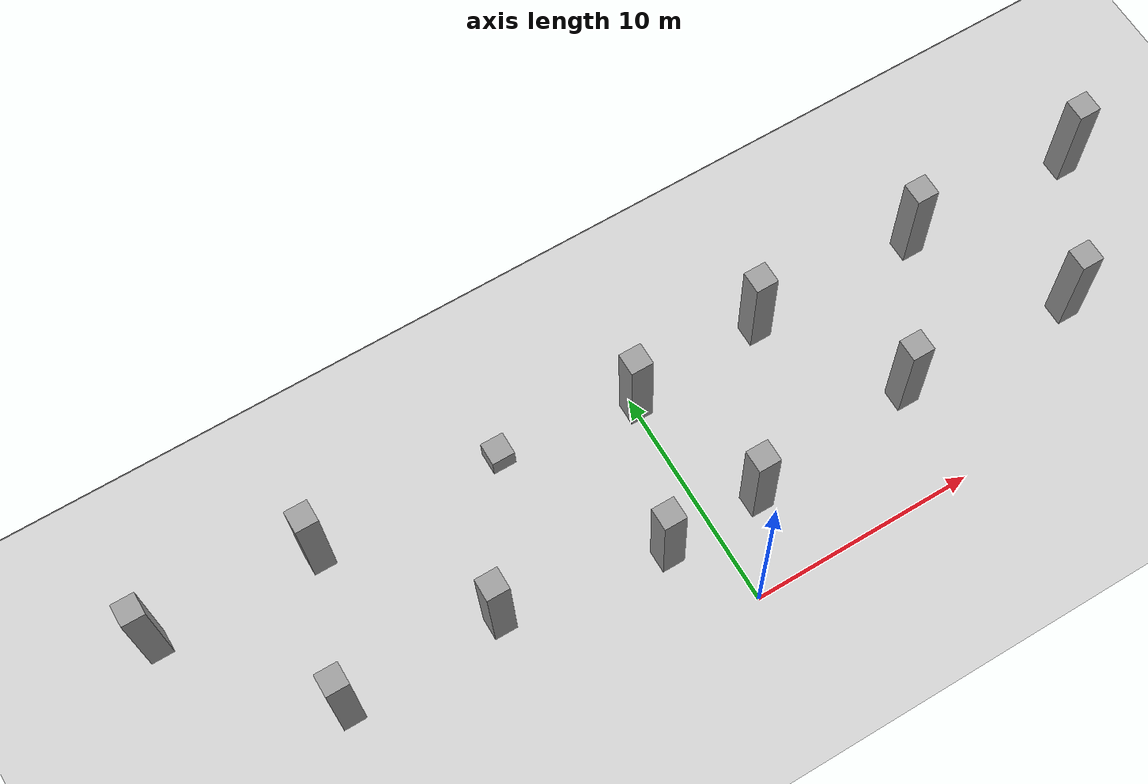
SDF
<sdf version="1.6">
 <world name="default">
  <model name="ground_plane">
   <static>1</static>
   <link name="link">
    <collision name="collision">
     <geometry><plane><normal>0 0 1</normal><size>100 100</size></plane></geometry>
     <surface>
      <contact><collide_bitmask>65535</collide_bitmask></contact>
      <friction><ode><mu>100</mu><mu2>50</mu2></ode></friction>
     </surface>
    </collision>
    <visual name="visual">
     <cast_shadows>0</cast_shadows>
     <geometry><plane><normal>0 0 1</normal><size>100 100</size></plane></geometry>
     <material>
      <script><uri>file://media/materials/scripts/gazebo.material</uri><name>Gazebo/Grey</name></script>
     </material>
    </visual>
   </link>
  </model>
  <model name="unit_box">
   <pose>-6.16523 9.81793 2.48577 0 0 -0.002672</pose>
   <link name="link">
    <inertial>
     <mass>1</mass>
     <inertia>
      <ixx>0.166667</ixx>
      <ixy>0</ixy>
      <ixz>0</ixz>
      <iyy>0.166667</iyy>
      <iyz>0</iyz>
      <izz>0.166667</izz>
     </inertia>
    </inertial>
    <collision name="collision"><geometry><box><size>1 1 1.00001</size></box></geometry></collision>
    <visual name="visual">
     <geometry><box><size>1 1 1.00001</size></box></geometry>
     <material>
      <script><name>Gazebo/Grey</name><uri>file://media/materials/scripts/gazebo.material</uri></script>
     </material>
    </visual>
   </link>
  </model>
  <model name="unit_box_clone">
   <pose>-2.19146 3.39498 2.48578 0 -0 -0.001783</pose>
   <link name="link">
    <inertial>
     <mass>1</mass>
     <inertia>
      <ixx>0.166667</ixx>
      <ixy>0</ixy>
      <ixz>0</ixz>
      <iyy>0.166667</iyy>
      <iyz>0</iyz>
      <izz>0.166667</izz>
     </inertia>
    </inertial>
    <collision name="collision"><geometry><box><size>1 1 4.95156</size></box></geometry></collision>
    <visual name="visual">
     <geometry><box><size>1 1 4.95156</size></box></geometry>
     <material>
      <script><name>Gazebo/Grey</name><uri>file://media/materials/scripts/gazebo.material</uri></script>
     </material>
    </visual>
   </link>
  </model>
  <model name="unit_box_clone_0">
   <pose>2.12174 3.52177 2.48578 0 0 -0.001066</pose>
   <link name="link">
    <inertial>
     <mass>1</mass>
     <inertia>
      <ixx>0.166667</ixx>
      <ixy>0</ixy>
      <ixz>0</ixz>
      <iyy>0.166667</iyy>
      <iyz>0</iyz>
      <izz>0.166667</izz>
     </inertia>
    </inertial>
    <collision name="collision"><geometry><box><size>1 1 4.95156</size></box></geometry></collision>
    <visual name="visual">
     <geometry><box><size>1 1 4.95156</size></box></geometry>
     <material>
      <script><name>Gazebo/Grey</name><uri>file://media/materials/scripts/gazebo.material</uri></script>
     </material>
    </visual>
   </link>
  </model>
  <model name="unit_box_clone_1">
   <pose>0.056178 9.53715 2.48578 0 0 -0.001077</pose>
   <link name="link">
    <inertial>
     <mass>1</mass>
     <inertia>
      <ixx>0.166667</ixx>
      <ixy>0</ixy>
      <ixz>0</ixz>
      <iyy>0.166667</iyy>
      <iyz>0</iyz>
      <izz>0.166667</izz>
     </inertia>
    </inertial>
    <collision name="collision"><geometry><box><size>1 1 4.95156</size></box></geometry></collision>
    <visual name="visual">
     <geometry><box><size>1 1 4.95156</size></box></geometry>
     <material>
      <script><name>Gazebo/Grey</name><uri>file://media/materials/scripts/gazebo.material</uri></script>
     </material>
    </visual>
   </link>
  </model>
  <model name="unit_box_clone_2">
   <pose>6.18654 10.0265 2.48578 0 0 -0.00114</pose>
   <link name="link">
    <inertial>
     <mass>1</mass>
     <inertia>
      <ixx>0.166667</ixx>
      <ixy>0</ixy>
      <ixz>0</ixz>
      <iyy>0.166667</iyy>
      <iyz>0</iyz>
      <izz>0.166667</izz>
     </inertia>
    </inertial>
    <collision name="collision"><geometry><box><size>1 1 4.95156</size></box></geometry></collision>
    <visual name="visual">
     <geometry><box><size>1 1 4.95156</size></box></geometry>
     <material>
      <script><name>Gazebo/Grey</name><uri>file://media/materials/scripts/gazebo.material</uri></script>
     </material>
    </visual>
   </link>
  </model>
  <model name="unit_box_clone_3">
   <pose>13.9766 10.04 2.48578 0 0 -0.00143</pose>
   <link name="link">
    <inertial>
     <mass>1</mass>
     <inertia>
      <ixx>0.166667</ixx>
      <ixy>0</ixy>
      <ixz>0</ixz>
      <iyy>0.166667</iyy>
      <iyz>0</iyz>
      <izz>0.166667</izz>
     </inertia>
    </inertial>
    <collision name="collision"><geometry><box><size>1 1 4.95156</size></box></geometry></collision>
    <visual name="visual">
     <geometry><box><size>1 1 4.95156</size></box></geometry>
     <material>
      <script><name>Gazebo/Grey</name><uri>file://media/materials/scripts/gazebo.material</uri></script>
     </material>
    </visual>
   </link>
  </model>
  <model name="unit_box_clone_4">
   <pose>22.0069 9.84055 2.48578 -0 -0 -0.001083</pose>
   <link name="link">
    <inertial>
     <mass>1</mass>
     <inertia>
      <ixx>0.166667</ixx>
      <ixy>0</ixy>
      <ixz>0</ixz>
      <iyy>0.166667</iyy>
      <iyz>0</iyz>
      <izz>0.166667</izz>
     </inertia>
    </inertial>
    <collision name="collision"><geometry><box><size>1 1 4.95156</size></box></geometry></collision>
    <visual name="visual">
     <geometry><box><size>1 1 4.95156</size></box></geometry>
     <material>
      <script><name>Gazebo/Grey</name><uri>file://media/materials/scripts/gazebo.material</uri></script>
     </material>
    </visual>
   </link>
  </model>
  <model name="unit_box_clone_5">
   <pose>9.82435 4.34324 2.48578 0 0 -0.001583</pose>
   <link name="link">
    <inertial>
     <mass>1</mass>
     <inertia>
      <ixx>0.166667</ixx>
      <ixy>0</ixy>
      <ixz>0</ixz>
      <iyy>0.166667</iyy>
      <iyz>0</iyz>
      <izz>0.166667</izz>
     </inertia>
    </inertial>
    <collision name="collision"><geometry><box><size>1 1 4.95156</size></box></geometry></collision>
    <visual name="visual">
     <geometry><box><size>1 1 4.95156</size></box></geometry>
     <material>
      <script><name>Gazebo/Grey</name><uri>file://media/materials/scripts/gazebo.material</uri></script>
     </material>
    </visual>
   </link>
  </model>
  <model name="unit_box_clone_6">
   <pose>17.9007 4.13523 2.48578 0 -0 -0.001021</pose>
   <link name="link">
    <inertial>
     <mass>1</mass>
     <inertia>
      <ixx>0.166667</ixx>
      <ixy>0</ixy>
      <ixz>0</ixz>
      <iyy>0.166667</iyy>
      <iyz>0</iyz>
      <izz>0.166667</izz>
     </inertia>
    </inertial>
    <collision name="collision"><geometry><box><size>1 1 4.95156</size></box></geometry></collision>
    <visual name="visual">
     <geometry><box><size>1 1 4.95156</size></box></geometry>
     <material>
      <script><name>Gazebo/Grey</name><uri>file://media/materials/scripts/gazebo.material</uri></script>
     </material>
    </visual>
   </link>
  </model>
  <model name="unit_box_clone_7">
   <pose>-14.159 10.4913 2.48578 0 0 -0.001733</pose>
   <link name="link">
    <inertial>
     <mass>1</mass>
     <inertia>
      <ixx>0.166667</ixx>
      <ixy>0</ixy>
      <ixz>0</ixz>
      <iyy>0.166667</iyy>
      <iyz>0</iyz>
      <izz>0.166667</izz>
     </inertia>
    </inertial>
    <collision name="collision"><geometry><box><size>1 1 4.95156</size></box></geometry></collision>
    <visual name="visual">
     <geometry><box><size>1 1 4.95156</size></box></geometry>
     <material>
      <script><name>Gazebo/Grey</name><uri>file://media/materials/scripts/gazebo.material</uri></script>
     </material>
    </visual>
   </link>
  </model>
  <model name="unit_box_clone_8">
   <pose>-21.3209 10.5432 2.48578 0 0 -5.3e-05</pose>
   <link name="link">
    <inertial>
     <mass>1</mass>
     <inertia>
      <ixx>0.166667</ixx>
      <ixy>0</ixy>
      <ixz>0</ixz>
      <iyy>0.166667</iyy>
      <iyz>0</iyz>
      <izz>0.166667</izz>
     </inertia>
    </inertial>
    <collision name="collision"><geometry><box><size>1 1 4.95156</size></box></geometry></collision>
    <visual name="visual">
     <geometry><box><size>1 1 4.95156</size></box></geometry>
     <material>
      <script><name>Gazebo/Grey</name><uri>file://media/materials/scripts/gazebo.material</uri></script>
     </material>
    </visual>
   </link>
  </model>
  <model name="unit_box_clone_9">
   <pose>-16.0914 4.2912 2.48578 0 0 -0.001399</pose>
   <link name="link">
    <inertial>
     <mass>1</mass>
     <inertia>
      <ixx>0.166667</ixx>
      <ixy>0</ixy>
      <ixz>0</ixz>
      <iyy>0.166667</iyy>
      <iyz>0</iyz>
      <izz>0.166667</izz>
     </inertia>
    </inertial>
    <collision name="collision"><geometry><box><size>1 1 4.95156</size></box></geometry></collision>
    <visual name="visual">
     <geometry><box><size>1 1 4.95156</size></box></geometry>
     <material>
      <script><name>Gazebo/Grey</name><uri>file://media/materials/scripts/gazebo.material</uri></script>
     </material>
    </visual>
   </link>
  </model>
  <model name="unit_box_clone_10">
   <pose>-9.30129 4.42851 2.48578 0 -0 -0.001412</pose>
   <link name="link">
    <inertial>
     <mass>1</mass>
     <inertia>
      <ixx>0.166667</ixx>
      <ixy>0</ixy>
      <ixz>0</ixz>
      <iyy>0.166667</iyy>
      <iyz>0</iyz>
      <izz>0.166667</izz>
     </inertia>
    </inertial>
    <collision name="collision"><geometry><box><size>1 1 4.95156</size></box></geometry></collision>
    <visual name="visual">
     <geometry><box><size>1 1 4.95156</size></box></geometry>
     <material>
      <script><name>Gazebo/Grey</name><uri>file://media/materials/scripts/gazebo.material</uri></script>
     </material>
    </visual>
   </link>
  </model>
  <model name="ground_plane_0">
   <static>1</static>
   <link name="link">
    <collision name="collision">
     <geometry><plane><normal>0 0 1</normal><size>100 100</size></plane></geometry>
     <surface><friction><ode><mu>100</mu><mu2>50</mu2></ode></friction></surface>
    </collision>
    <visual name="visual">
     <cast_shadows>0</cast_shadows>
     <geometry><plane><normal>0 0 1</normal><size>100 100</size></plane></geometry>
     <material>
      <script><uri>file://media/materials/scripts/gazebo.material</uri><name>Gazebo/Grey</name></script>
     </material>
    </visual>
   </link>
   <pose>0.033354 95.0033 0 0 -0 0</pose>
  </model>
 </world>
</sdf>
